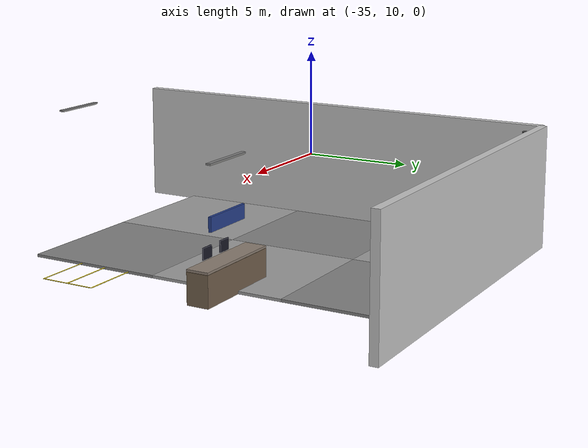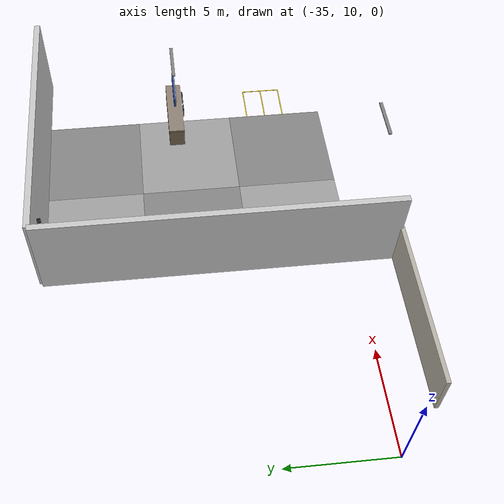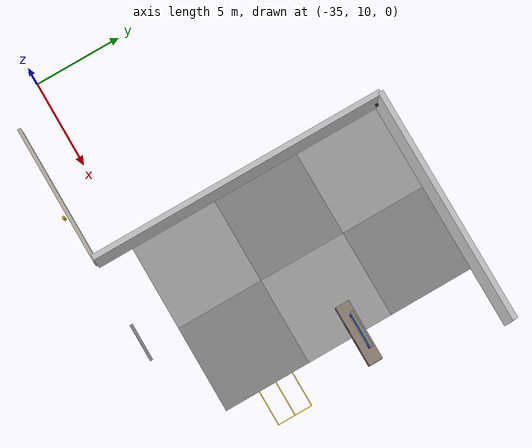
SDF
<sdf version="1.10">
 <world name="airport_terminal_world">
  <model name="gate_a1_queue_line1">
   <static>true</static>
   <pose>-15.0 14.0 0.06 0 0 0</pose>
   <link name="link">
    <visual name="vis">
     <geometry><box><size>4.0 0.05 0.01</size></box></geometry>
     <material><ambient>0.95 0.85 0.1 1.0</ambient><diffuse>0.95 0.85 0.1 1.0</diffuse></material>
    </visual>
   </link>
  </model>
  <model name="gate_a1_queue_line2">
   <static>true</static>
   <pose>-15.0 13.0 0.06 0 0 0</pose>
   <link name="link">
    <visual name="vis">
     <geometry><box><size>4.0 0.05 0.01</size></box></geometry>
     <material><ambient>0.95 0.85 0.1 1.0</ambient><diffuse>0.95 0.85 0.1 1.0</diffuse></material>
    </visual>
   </link>
  </model>
  <model name="gate_a1_queue_line3">
   <static>true</static>
   <pose>-15.0 12.0 0.06 0 0 0</pose>
   <link name="link">
    <visual name="vis">
     <geometry><box><size>4.0 0.05 0.01</size></box></geometry>
     <material><ambient>0.95 0.85 0.1 1.0</ambient><diffuse>0.95 0.85 0.1 1.0</diffuse></material>
    </visual>
   </link>
  </model>
  <model name="gate_a1_queue_side_l">
   <static>true</static>
   <pose>-17.0 13.0 0.06 0 0 0</pose>
   <link name="link">
    <visual name="vis">
     <geometry><box><size>0.05 2.0 0.01</size></box></geometry>
     <material><ambient>0.95 0.85 0.1 1.0</ambient><diffuse>0.95 0.85 0.1 1.0</diffuse></material>
    </visual>
   </link>
  </model>
  <model name="gate_a1_queue_side_r">
   <static>true</static>
   <pose>-13.0 13.0 0.06 0 0 0</pose>
   <link name="link">
    <visual name="vis">
     <geometry><box><size>0.05 2.0 0.01</size></box></geometry>
     <material><ambient>0.95 0.85 0.1 1.0</ambient><diffuse>0.95 0.85 0.1 1.0</diffuse></material>
    </visual>
   </link>
  </model>
  <model name="vtile_0_7">
   <static>true</static>
   <pose>-22.5 12.5 0.05 0 0 0</pose>
   <link name="link">
    <visual name="vis">
     <geometry><box><size>5.0 5.0 0.1</size></box></geometry>
     <material><ambient>0.62 0.62 0.62 1.0</ambient><diffuse>0.62 0.62 0.62 1.0</diffuse></material>
    </visual>
   </link>
  </model>
  <model name="vtile_0_8">
   <static>true</static>
   <pose>-22.5 17.5 0.05 0 0 0</pose>
   <link name="link">
    <visual name="vis">
     <geometry><box><size>5.0 5.0 0.1</size></box></geometry>
     <material><ambient>0.52 0.52 0.52 1.0</ambient><diffuse>0.52 0.52 0.52 1.0</diffuse></material>
    </visual>
   </link>
  </model>
  <model name="vtile_0_9">
   <static>true</static>
   <pose>-22.5 22.5 0.05 0 0 0</pose>
   <link name="link">
    <visual name="vis">
     <geometry><box><size>5.0 5.0 0.1</size></box></geometry>
     <material><ambient>0.62 0.62 0.62 1.0</ambient><diffuse>0.62 0.62 0.62 1.0</diffuse></material>
    </visual>
   </link>
  </model>
  <model name="vtile_1_7">
   <static>true</static>
   <pose>-17.5 12.5 0.05 0 0 0</pose>
   <link name="link">
    <visual name="vis">
     <geometry><box><size>5.0 5.0 0.1</size></box></geometry>
     <material><ambient>0.52 0.52 0.52 1.0</ambient><diffuse>0.52 0.52 0.52 1.0</diffuse></material>
    </visual>
   </link>
  </model>
  <model name="vtile_1_8">
   <static>true</static>
   <pose>-17.5 17.5 0.05 0 0 0</pose>
   <link name="link">
    <visual name="vis">
     <geometry><box><size>5.0 5.0 0.1</size></box></geometry>
     <material><ambient>0.62 0.62 0.62 1.0</ambient><diffuse>0.62 0.62 0.62 1.0</diffuse></material>
    </visual>
   </link>
  </model>
  <model name="vtile_1_9">
   <static>true</static>
   <pose>-17.5 22.5 0.05 0 0 0</pose>
   <link name="link">
    <visual name="vis">
     <geometry><box><size>5.0 5.0 0.1</size></box></geometry>
     <material><ambient>0.52 0.52 0.52 1.0</ambient><diffuse>0.52 0.52 0.52 1.0</diffuse></material>
    </visual>
   </link>
  </model>
  <model name="wall_north_1">
   <static>true</static>
   <pose>-18.25 25.0 2.25 0 0 0</pose>
   <link name="link">
    <collision name="col"><geometry><box><size>13.5 0.3 4.5</size></box></geometry></collision>
    <visual name="vis">
     <geometry><box><size>13.5 0.3 4.5</size></box></geometry>
     <material><ambient>0.78 0.78 0.78 1.0</ambient><diffuse>0.78 0.78 0.78 1.0</diffuse></material>
    </visual>
   </link>
  </model>
  <model name="wall_west_n">
   <static>true</static>
   <pose>-25.0 16.5 2.25 0 0 0</pose>
   <link name="link">
    <collision name="col"><geometry><box><size>0.3 17.0 4.5</size></box></geometry></collision>
    <visual name="vis">
     <geometry><box><size>0.3 17.0 4.5</size></box></geometry>
     <material><ambient>0.78 0.78 0.78 1.0</ambient><diffuse>0.78 0.78 0.78 1.0</diffuse></material>
    </visual>
   </link>
  </model>
  <model name="lamp_c_n20_strip">
   <static>true</static>
   <pose>-20.0 8.0 4.42 0 0 0</pose>
   <link name="link">
    <visual name="strip">
     <geometry><box><size>2.0 0.12 0.04</size></box></geometry>
     <material>
      <ambient>0.95 0.95 0.88 1.0</ambient>
      <diffuse>0.95 0.95 0.88 1.0</diffuse>
      <emissive>0.35 0.35 0.3 1.0</emissive>
     </material>
    </visual>
    <visual name="housing">
     <pose>0 0 0.03 0 0 0</pose>
     <geometry><box><size>2.1 0.16 0.06</size></box></geometry>
     <material><ambient>0.5 0.5 0.5 1.0</ambient><diffuse>0.5 0.5 0.5 1.0</diffuse></material>
    </visual>
   </link>
  </model>
  <model name="lamp_gate_a1_strip">
   <static>true</static>
   <pose>-15.0 18.0 4.42 0 0 0</pose>
   <link name="link">
    <visual name="strip">
     <geometry><box><size>2.0 0.12 0.04</size></box></geometry>
     <material>
      <ambient>0.95 0.95 0.88 1.0</ambient>
      <diffuse>0.95 0.95 0.88 1.0</diffuse>
      <emissive>0.35 0.35 0.3 1.0</emissive>
     </material>
    </visual>
    <visual name="housing">
     <pose>0 0 0.03 0 0 0</pose>
     <geometry><box><size>2.1 0.16 0.06</size></box></geometry>
     <material><ambient>0.5 0.5 0.5 1.0</ambient><diffuse>0.5 0.5 0.5 1.0</diffuse></material>
    </visual>
   </link>
  </model>
  <model name="gate_a1_counter">
   <static>true</static>
   <pose>-15.0 18.0 0.55 0 0 0</pose>
   <link name="link">
    <collision name="col"><geometry><box><size>3.5 0.8 1.1</size></box></geometry></collision>
    <visual name="vis">
     <geometry><box><size>3.5 0.8 1.1</size></box></geometry>
     <material><ambient>0.45 0.38 0.3 1.0</ambient><diffuse>0.45 0.38 0.3 1.0</diffuse></material>
    </visual>
   </link>
  </model>
  <model name="gate_a1_counter_top">
   <static>true</static>
   <pose>-15.0 18.0 1.15 0 0 0</pose>
   <link name="link">
    <collision name="col"><geometry><box><size>3.5 0.8 0.08</size></box></geometry></collision>
    <visual name="vis">
     <geometry><box><size>3.5 0.8 0.08</size></box></geometry>
     <material><ambient>0.55 0.5 0.45 1.0</ambient><diffuse>0.55 0.5 0.45 1.0</diffuse></material>
    </visual>
   </link>
  </model>
  <model name="gate_a1_monitor">
   <static>true</static>
   <pose>-15.5 17.55 1.4 0 0 0</pose>
   <link name="link">
    <visual name="vis">
     <geometry><box><size>0.5 0.05 0.4</size></box></geometry>
     <material><ambient>0.1 0.1 0.15 1.0</ambient><diffuse>0.1 0.1 0.15 1.0</diffuse></material>
    </visual>
   </link>
  </model>
  <model name="gate_a1_monitor2">
   <static>true</static>
   <pose>-14.5 17.55 1.4 0 0 0</pose>
   <link name="link">
    <visual name="vis">
     <geometry><box><size>0.5 0.05 0.4</size></box></geometry>
     <material><ambient>0.1 0.1 0.15 1.0</ambient><diffuse>0.1 0.1 0.15 1.0</diffuse></material>
    </visual>
   </link>
  </model>
  <model name="gate_a1_sign">
   <static>true</static>
   <pose>-15.0 18.0 2.5 0 0 0</pose>
   <link name="link">
    <visual name="vis">
     <geometry><box><size>2.0 0.1 0.5</size></box></geometry>
     <material><ambient>0.15 0.25 0.55 1.0</ambient><diffuse>0.15 0.25 0.55 1.0</diffuse></material>
    </visual>
   </link>
  </model>
  <model name="gate_a1_sign_text">
   <static>true</static>
   <pose>-15.0 17.94 2.5 0 0 0</pose>
   <link name="link">
    <visual name="vis">
     <geometry><box><size>1.6 0.05 0.3</size></box></geometry>
     <material><ambient>0.9 0.9 0.9 1.0</ambient><diffuse>0.9 0.9 0.9 1.0</diffuse></material>
    </visual>
   </link>
  </model>
  <model name="camera_nw_mount">
   <static>true</static>
   <pose>-24.5 24.5 4.3 0 0 0</pose>
   <link name="link">
    <visual name="vis">
     <geometry><box><size>0.15 0.15 0.08</size></box></geometry>
     <material><ambient>0.1 0.1 0.1 1.0</ambient><diffuse>0.1 0.1 0.1 1.0</diffuse></material>
    </visual>
   </link>
  </model>
  <model name="camera_nw_body">
   <static>true</static>
   <pose>-24.5 24.5 4.15 0 1.9199 -0.7854</pose>
   <link name="link">
    <visual name="vis">
     <geometry><cylinder><radius>0.05</radius><length>0.16</length></cylinder></geometry>
     <material><ambient>0.12 0.12 0.12 1.0</ambient><diffuse>0.12 0.12 0.12 1.0</diffuse></material>
    </visual>
    <sensor name="camera_nw" type="camera">
     <pose>0 0 0 0 -1.5708 0</pose>
     <topic>/surveillance/nw</topic>
     <update_rate>10.0</update_rate>
     <camera>
      <horizontal_fov>1.9199</horizontal_fov>
      <image><width>1280.0</width><height>720.0</height></image>
      <clip><near>0.1</near><far>70.0</far></clip>
     </camera>
     <always_on>false</always_on>
     <visualize>false</visualize>
    </sensor>
   </link>
  </model>
  <model name="outer_wall_n">
   <static>true</static>
   <pose>-29.0 8.0 1.2 0 0 0</pose>
   <link name="link">
    <collision name="col"><geometry><box><size>8.0 0.2 2.4</size></box></geometry></collision>
    <visual name="vis">
     <geometry><box><size>8.0 0.2 2.4</size></box></geometry>
     <material><ambient>0.72 0.7 0.65 1.0</ambient><diffuse>0.72 0.7 0.65 1.0</diffuse></material>
    </visual>
   </link>
  </model>
  <model name="sec_poll_wn_b">
   <static>true</static>
   <pose>-28.0 7.7 0.5 0 0 0</pose>
   <link name="link">
    <collision name="col">
     <geometry><cylinder><radius>0.08</radius><length>1.0</length></cylinder></geometry>
    </collision>
    <visual name="vis">
     <geometry><cylinder><radius>0.08</radius><length>1.0</length></cylinder></geometry>
     <material><ambient>0.85 0.7 0.0 1.0</ambient><diffuse>0.85 0.7 0.0 1.0</diffuse></material>
    </visual>
   </link>
  </model>
 </world>
</sdf>
